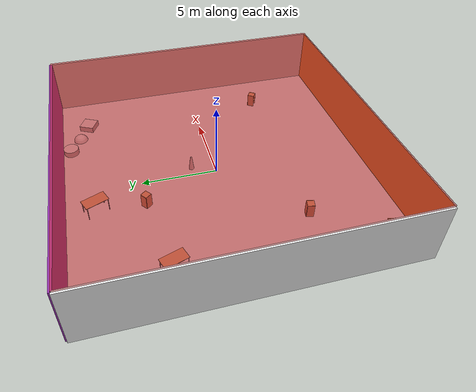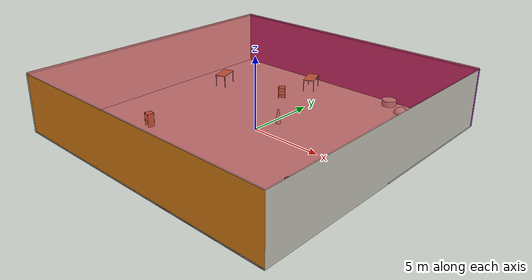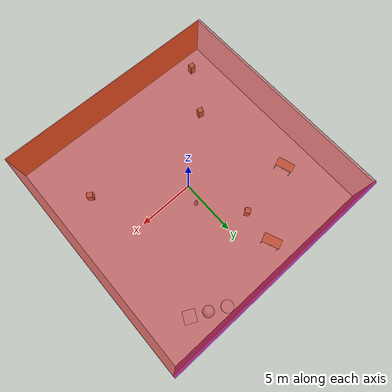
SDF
<sdf version="1.4">
 <world name="default">
  <physics type="ode">
   <max_step_size>0.001</max_step_size>
   <real_time_factor>1</real_time_factor>
   <real_time_update_rate>1000</real_time_update_rate>
   <gravity>0 0 -9.8</gravity>
  </physics>
  <scene><ambient>0.4 0.4 0.4 1</ambient><background>0.7 0.7 0.7 1</background><shadows>1</shadows></scene>
  <model name="Surrounding">
   <static>1</static>
   <link name="Ceiling">
    <collision name="Ceiling_Collision"><geometry><box><size>20 20 0.1</size></box></geometry></collision>
    <visual name="Ceiling_Visual">
     <geometry><box><size>20 20 0.1</size></box></geometry>
     <material>
      <script><uri>file://media/materials/scripts/gazebo.material</uri><name>Gazebo/RedTransparent</name></script>
     </material>
    </visual>
    <pose>0 0 4.05 0 0 0</pose>
   </link>
   <link name="Wall_South">
    <collision name="Wall_South_Collision">
     <geometry><box><size>20 0 4</size></box></geometry>
     <pose>0 0 2 0 -0 0</pose>
    </collision>
    <visual name="Wall_South_Visual">
     <pose>0 0 2 0 -0 0</pose>
     <geometry><box><size>20 0 4</size></box></geometry>
     <material>
      <script><uri>file://media/materials/scripts/gazebo.material</uri><name>Gazebo/Orange</name></script>
     </material>
    </visual>
    <velocity_decay><linear>0</linear><angular>0</angular></velocity_decay>
    <pose>0 -10 0 0 -0 0</pose>
   </link>
   <link name="Wall_East">
    <collision name="Wall_21_Collision">
     <geometry><box><size>20 0 4</size></box></geometry>
     <pose>0 0 2 0 -0 0</pose>
    </collision>
    <visual name="Wall_21_Visual">
     <pose>0 0 2 0 -0 0</pose>
     <geometry><box><size>20 0 4</size></box></geometry>
     <material>
      <script><uri>file://media/materials/scripts/gazebo.material</uri><name>Gazebo/PaintedWall</name></script>
     </material>
    </visual>
    <velocity_decay><linear>0</linear><angular>0</angular></velocity_decay>
    <pose>10 0 0 0 -0 1.5708</pose>
   </link>
   <link name="Wall_North">
    <collision name="Wall_22_Collision">
     <geometry><box><size>20 0.2 4</size></box></geometry>
     <pose>0 0 2 0 -0 0</pose>
    </collision>
    <visual name="Wall_22_Visual">
     <pose>0 0 2 0 -0 0</pose>
     <geometry><box><size>20 0.2 4</size></box></geometry>
     <material>
      <script><uri>file://media/materials/scripts/gazebo.material</uri><name>Gazebo/PurpleGlow</name></script>
     </material>
    </visual>
    <velocity_decay><linear>0</linear><angular>0</angular></velocity_decay>
    <pose>0 10 0 0 -0 0</pose>
   </link>
   <link name="Wall_West">
    <collision name="Wall_23_Collision">
     <geometry><box><size>20 0.2 4</size></box></geometry>
     <pose>0 0 2 0 -0 0</pose>
    </collision>
    <visual name="Wall_23_Visual">
     <pose>0 0 2 0 -0 0</pose>
     <geometry><box><size>20 0.2 4</size></box></geometry>
     <material>
      <script><uri>file://media/materials/scripts/gazebo.material</uri><name>Gazebo/WhiteGlow</name></script>
     </material>
    </visual>
    <velocity_decay><linear>0</linear><angular>0</angular></velocity_decay>
    <pose>-10 0 0 0 0 -1.5708</pose>
   </link>
   <link name="Ground_link">
    <collision name="collision">
     <pose>0 0 .05 0 -0 0</pose>
     <geometry><box><size>20 20 0.1</size></box></geometry>
    </collision>
    <visual name="visual">
     <pose>0 0 .05 0 -0 0</pose>
     <geometry><box><size>20 20 0.1</size></box></geometry>
     <material>
      <script><uri>file://media/materials/scripts/gazebo.material</uri><name>Gazebo/Pioneer2Body</name></script>
     </material>
    </visual>
   </link>
   <static>1</static>
  </model>
  <spherical_coordinates>
   <surface_model>EARTH_WGS84</surface_model>
   <latitude_deg>0</latitude_deg>
   <longitude_deg>0</longitude_deg>
   <elevation>0</elevation>
   <heading_deg>0</heading_deg>
  </spherical_coordinates>
  <light name="lightball_0" type="diffuse">
   <diffuse>0.8 0.8 0.8 1</diffuse>
   <specular>0.2 0.2 0.2 1</specular>
   <attenuation>
    <range>100</range>
    <constant>0.7</constant>
    <linear>0.01</linear>
    <quadratic>0.001</quadratic>
   </attenuation>
   <direction>-0.5 0.1 -0.9</direction>
   <pose>-8.09898974518 8.1340856919 1.58003046642 0 0 0</pose>
  </light>
  <light name="lightball_1" type="diffuse">
   <diffuse>0.8 0.8 0.8 1</diffuse>
   <specular>0.2 0.2 0.2 1</specular>
   <attenuation>
    <range>100</range>
    <constant>0.7</constant>
    <linear>0.01</linear>
    <quadratic>0.001</quadratic>
   </attenuation>
   <direction>-0.5 0.1 -0.9</direction>
   <pose>0.761991382662 -2.66038002363 0.527312295796 0 0 0</pose>
  </light>
  <light name="lightball_2" type="diffuse">
   <diffuse>0.8 0.8 0.8 1</diffuse>
   <specular>0.2 0.2 0.2 1</specular>
   <attenuation>
    <range>100</range>
    <constant>0.7</constant>
    <linear>0.01</linear>
    <quadratic>0.001</quadratic>
   </attenuation>
   <direction>-0.5 0.1 -0.9</direction>
   <pose>5.44313962319 3.35820045718 1.95717550811 0 0 0</pose>
  </light>
  <light name="lightball_3" type="diffuse">
   <diffuse>0.8 0.8 0.8 1</diffuse>
   <specular>0.2 0.2 0.2 1</specular>
   <attenuation>
    <range>100</range>
    <constant>0.7</constant>
    <linear>0.01</linear>
    <quadratic>0.001</quadratic>
   </attenuation>
   <direction>-0.5 0.1 -0.9</direction>
   <pose>-1.21277277991 2.05736988399 2.14216440207 0 0 0</pose>
  </light>
  <light name="lightball_4" type="diffuse">
   <diffuse>0.8 0.8 0.8 1</diffuse>
   <specular>0.2 0.2 0.2 1</specular>
   <attenuation>
    <range>100</range>
    <constant>0.7</constant>
    <linear>0.01</linear>
    <quadratic>0.001</quadratic>
   </attenuation>
   <direction>-0.5 0.1 -0.9</direction>
   <pose>-2.82588510162 -4.99254139938 0.779101331432 0 0 0</pose>
  </light>
  <include><uri>model://cabinet</uri><pose>-7.83287872169 -8.45527390613 0 0 0 1.39799902686</pose></include>
  <include><uri>model://table</uri><pose>-7.23697198647 4.21654328342 0 0 0 1.89776003549</pose></include>
  <include><uri>model://cabinet</uri><pose>-5.30592980693 -4.45603222743 0 0 0 1.35123150306</pose></include>
  <include><uri>model://cabinet</uri><pose>-2.08742662389 4.98114948057 0 0 0 2.23114510927</pose></include>
  <include><uri>model://table</uri><pose>-1.7996725999 8.03509505496 0 0 0 1.96814449712</pose></include>
  <include>
   <uri>model://construction_cone</uri>
   <pose>0.563195050238 1.58816596365 0 0 0 0.52672448261</pose>
  </include>
  <include>
   <uri>model://textured_shapes</uri>
   <pose>5.56080148153 8.66328411359 0 0 0 1.1001464552</pose>
  </include>
  <include><uri>model://cabinet</uri><pose>6.86082534162 -4.65128447605 0 0 0 0.965248963469</pose></include>
 </world>
</sdf>

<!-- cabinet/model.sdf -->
<sdf version="1.5">
  <model name="cabinet">
    <static>true</static>
    <link name="cabinet_bottom_plate">
      <inertial>
        <pose>0 0 -1 0 0 0</pose>
        <inertia>
          <ixx>2.050000</ixx>
          <ixy>0</ixy>
          <ixz>0</ixz>
          <iyy>2.050000</iyy>
          <iyz>0</iyz>
          <izz>2.050000</izz>
        </inertia>
        <mass>25.000000</mass>
      </inertial>
      <collision name="cabinet_bottom_plate_geom">
        <pose>0 0 0.010000 0 0 0</pose>
        <geometry>
          <box>
            <size>0.450000 0.450000 0.020000</size>
          </box>
        </geometry>
      </collision>
      <visual name="cabinet_bottom_plate_geom_visual">
        <pose>0 0 0.010000 0 0 0</pose>
        <geometry>
          <box>
            <size>0.450000 0.450000 0.020000</size>
          </box>
        </geometry>
        <material>
          <script>
            <uri>model://media/materials/scripts/gazebo.material</uri>
            <name>Gazebo/Wood</name>
          </script>
        </material>
      </visual>
      <collision name="cabinet_bottom_plate_geom_cabinet_back_plate">
        <pose>0.235000 0 0.510000 0 0 0</pose>
        <geometry>
          <box>
            <size>0.020000 0.450000 1.020000</size>
          </box>
        </geometry>
      </collision>
      <visual name="cabinet_bottom_plate_geom_cabinet_back_plate_visual">
        <pose>0.235000 0 0.510000 0 0 0</pose>
        <geometry>
          <box>
            <size>0.020000 0.450000 1.020000</size>
          </box>
        </geometry>
        <material>
          <script>
            <uri>model://media/materials/scripts/gazebo.material</uri>
            <name>Gazebo/Wood</name>
          </script>
        </material>
      </visual>
      <collision name="cabinet_bottom_plate_geom_cabinet_left_plate">
        <pose>0 0.235000 0.510000 0 0 0</pose>
        <geometry>
          <box>
            <size>0.450000 0.020000 1.020000</size>
          </box>
        </geometry>
      </collision>
      <visual name="cabinet_bottom_plate_geom_cabinet_left_plate_visual">
        <pose>0 0.235000 0.510000 0 0 0</pose>
        <geometry>
          <box>
            <size>0.450000 0.020000 1.020000</size>
          </box>
        </geometry>
        <material>
          <script>
            <uri>model://media/materials/scripts/gazebo.material</uri>
            <name>Gazebo/Wood</name>
          </script>
        </material>
      </visual>
      <collision name="cabinet_bottom_plate_geom_cabinet_middle_plate">
        <pose>0 0 0.510000 0 0 0</pose>
        <geometry>
          <box>
            <size>0.450000 0.450000 0.020000</size>
          </box>
        </geometry>
      </collision>
      <visual name="cabinet_bottom_plate_geom_cabinet_middle_plate_visual">
        <pose>0 0 0.510000 0 0 0</pose>
        <geometry>
          <box>
            <size>0.450000 0.450000 0.020000</size>
          </box>
        </geometry>
        <material>
          <script>
            <uri>model://media/materials/scripts/gazebo.material</uri>
            <name>Gazebo/Wood</name>
          </script>
        </material>
      </visual>
      <collision name="cabinet_bottom_plate_geom_cabinet_right_plate">
        <pose>0 -0.235000 0.510000 0 0 0</pose>
        <geometry>
          <box>
            <size>0.450000 0.020000 1.020000</size>
          </box>
        </geometry>
      </collision>
      <visual name="cabinet_bottom_plate_geom_cabinet_right_plate_visual">
        <pose>0 -0.235000 0.510000 0 0 0</pose>
        <geometry>
          <box>
            <size>0.450000 0.020000 1.020000</size>
          </box>
        </geometry>
        <material>
          <script>
            <uri>model://media/materials/scripts/gazebo.material</uri>
            <name>Gazebo/Wood</name>
          </script>
        </material>
      </visual>
      <collision name="cabinet_bottom_plate_geom_cabinet_top_plate">
        <pose>0 0 1.010000 0 0 0</pose>
        <geometry>
          <box>
            <size>0.450000 0.450000 0.020000</size>
          </box>
        </geometry>
      </collision>
      <visual name="cabinet_bottom_plate_geom_cabinet_top_plate_visual">
        <pose>0 0 1.010000 0 0 0</pose>
        <geometry>
          <box>
            <size>0.450000 0.450000 0.020000</size>
          </box>
        </geometry>
        <material>
          <script>
            <uri>model://media/materials/scripts/gazebo.material</uri>
            <name>Gazebo/Wood</name>
          </script>
        </material>
      </visual>
    </link>
  </model>
</sdf>

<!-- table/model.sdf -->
<sdf version="1.5">
  <model name="table">
    <static>true</static>
    <link name="link">
      <collision name="surface">
        <pose>0 0 1.0 0 0 0</pose>
        <geometry>
          <box>
            <size>1.5 0.8 0.03</size>
          </box>
        </geometry>
        <surface>
          <friction>
            <ode>
              <mu>0.6</mu>
              <mu2>0.6</mu2>
            </ode>
          </friction>
        </surface>
      </collision>
      <visual name="visual1">
        <pose>0 0 1.0 0 0 0</pose>
        <geometry>
          <box>
            <size>1.5 0.8 0.03</size>
          </box>
        </geometry>
        <material>
          <script>
            <uri>model://media/materials/scripts/gazebo.material</uri>
            <name>Gazebo/Wood</name>
          </script>
        </material>
      </visual>
      <collision name="front_left_leg">
        <pose>0.68 0.38 0.5 0 0 0</pose>
        <geometry>
          <cylinder>
            <radius>0.02</radius>
            <length>1.0</length>
          </cylinder>
        </geometry>
      </collision>
      <visual name="front_left_leg">
        <pose>0.68 0.38 0.5 0 0 0</pose>
        <geometry>
          <cylinder>
            <radius>0.02</radius>
            <length>1.0</length>
          </cylinder>
        </geometry>
        <material>
          <script>
            <uri>model://media/materials/scripts/gazebo.material</uri>
            <name>Gazebo/Grey</name>
          </script>
        </material>
      </visual>
      <collision name="front_right_leg">
        <pose>0.68 -0.38 0.5 0 0 0</pose>
        <geometry>
          <cylinder>
            <radius>0.02</radius>
            <length>1.0</length>
          </cylinder>
        </geometry>
      </collision>
      <visual name="front_right_leg">
        <pose>0.68 -0.38 0.5 0 0 0</pose>
        <geometry>
          <cylinder>
            <radius>0.02</radius>
            <length>1.0</length>
          </cylinder>
        </geometry>
        <material>
          <script>
            <uri>model://media/materials/scripts/gazebo.material</uri>
            <name>Gazebo/Grey</name>
          </script>
        </material>
      </visual>
      <collision name="back_right_leg">
        <pose>-0.68 -0.38 0.5 0 0 0</pose>
        <geometry>
          <cylinder>
            <radius>0.02</radius>
            <length>1.0</length>
          </cylinder>
        </geometry>
      </collision>
      <visual name="back_right_leg">
        <pose>-0.68 -0.38 0.5 0 0 0</pose>
        <geometry>
          <cylinder>
            <radius>0.02</radius>
            <length>1.0</length>
          </cylinder>
        </geometry>
        <material>
          <script>
            <uri>model://media/materials/scripts/gazebo.material</uri>
            <name>Gazebo/Grey</name>
          </script>
        </material>
      </visual>
      <collision name="back_left_leg">
        <pose>-0.68 0.38 0.5 0 0 0</pose>
        <geometry>
          <cylinder>
            <radius>0.02</radius>
            <length>1.0</length>
          </cylinder>
        </geometry>
      </collision>
      <visual name="back_left_leg">
        <pose>-0.68 0.38 0.5 0 0 0</pose>
        <geometry>
          <cylinder>
            <radius>0.02</radius>
            <length>1.0</length>
          </cylinder>
        </geometry>
        <material>
          <script>
            <uri>model://media/materials/scripts/gazebo.material</uri>
            <name>Gazebo/Grey</name>
          </script>
        </material>
      </visual>
    </link>
  </model>
</sdf>

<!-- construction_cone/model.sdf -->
<sdf version="1.5">
  <model name="Construction Cone">
    <link name="link">
      <collision name="collision">
        <geometry>
          <mesh>
            <scale>10 10 10</scale>
            <uri>file://isr-testbed/construction_cone/meshes/construction_cone.dae</uri>
          </mesh>
        </geometry>
      </collision>
      <visual name="visual">
        <geometry>
          <mesh>
            <scale>10 10 10</scale>
            <uri>file://isr-testbed/construction_cone/meshes/construction_cone.dae</uri>
          </mesh>
        </geometry>
      </visual>
    </link>
  </model>
</sdf>

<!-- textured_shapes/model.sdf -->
<sdf version="1.6">
  <model name="textured_shapes">
    <pose>0 0 0.5 0 0 0</pose>
    <link name="box">
      <pose>0 -1.5 0 0 0 0</pose>
      <collision name="collision">
        <geometry>
          <box>
            <size>1 1 1</size>
          </box>
        </geometry>
      </collision>
      <visual name="visual">
        <geometry>
          <box>
            <size>1 1 1</size>
          </box>
        </geometry>
        <material>
          <script>
            <uri>model://../model_source/models/textured_shapes/materials/scripts</uri>
            <uri>model://../model_source/models/textured_shapes/materials/textures</uri>
            <name>TexturedShape/Squares</name>
          </script>
        </material>
      </visual>
    </link>
    <link name="sphere">
      <collision name="collision">
        <geometry>
          <sphere>
            <radius>0.5</radius>
          </sphere>
        </geometry>
      </collision>
      <visual name="visual">
        <geometry>
          <sphere>
            <radius>0.5</radius>
          </sphere>
        </geometry>
        <material>
          <script>
            <uri>model://../model_source/models/textured_shapes/materials/scripts</uri>
            <uri>model://../model_source/models/textured_shapes/materials/textures</uri>
            <name>TexturedShape/Squares</name>
          </script>
        </material>
      </visual>
    </link>
    <link name="cylinder">
      <pose>0 1.5 0 0 0 0</pose>
      <collision name="collision">
        <geometry>
          <cylinder>
            <radius>0.5</radius>
            <length>1</length>
          </cylinder>
        </geometry>
      </collision>
      <visual name="visual">
        <geometry>
          <cylinder>
            <radius>0.5</radius>
            <length>1</length>
          </cylinder>
        </geometry>
        <material>
          <script>
            <uri>model://../model_source/models/textured_shapes/materials/scripts</uri>
            <uri>model://../model_source/models/textured_shapes/materials/textures</uri>
            <name>TexturedShape/Squares</name>
          </script>
        </material>
      </visual>
    </link>
  </model>
</sdf>
